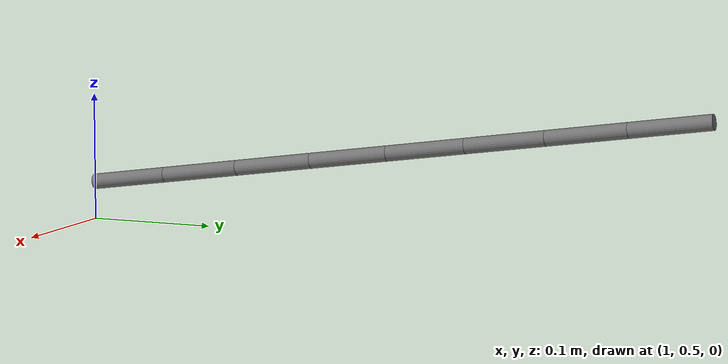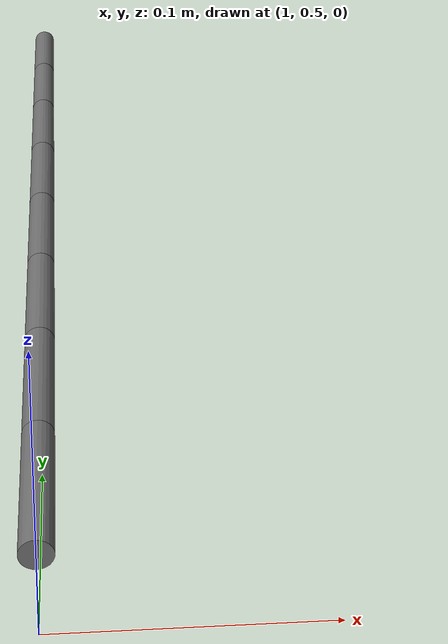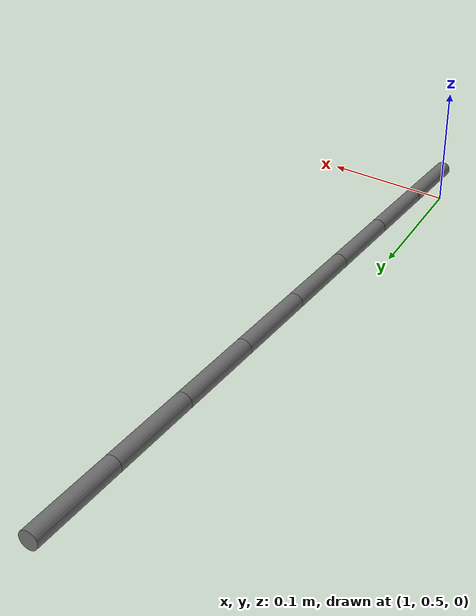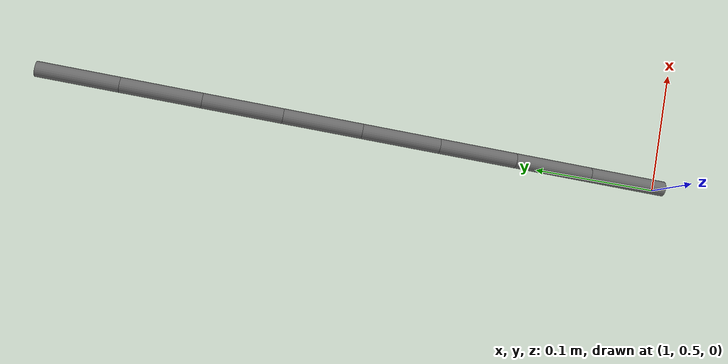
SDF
<?xml version="1.0"?>
<sdf version="1.7">
  <model name="cable_3">
    <self_collide>false</self_collide>

    <!-- Segment 0 -->
    <link name="seg_0">
      <pose>1.000000 0.968750 0.095625 0.000000 1.709892 -1.570796</pose>
      <inertial>
        <mass>0.006</mass>
        <inertia>
          <ixx>0.000002045</ixx>
          <iyy>0.000002045</iyy>
          <izz>0.000000108</izz>
          <ixy>0</ixy><ixz>0</ixz><iyz>0</iyz>
        </inertia>
      </inertial>
      <collision name="col">
        <geometry>
          <cylinder><radius>0.006</radius><length>0.063110</length></cylinder>
        </geometry>
      </collision>
      <visual name="vis">
        <geometry>
          <cylinder><radius>0.006</radius><length>0.063110</length></cylinder>
        </geometry>
        <material>
          <ambient>0.20 0.20 0.20 1</ambient>
          <diffuse>0.45 0.45 0.45 1</diffuse>
          <specular>0.05 0.05 0.05 1</specular>
        </material>
      </visual>
    </link>

    <!-- Segment 1 -->
    <link name="seg_1">
      <pose>1.000000 0.906250 0.086875 0.000000 1.709892 -1.570796</pose>
      <inertial>
        <mass>0.006</mass>
        <inertia>
          <ixx>0.000002045</ixx>
          <iyy>0.000002045</iyy>
          <izz>0.000000108</izz>
          <ixy>0</ixy><ixz>0</ixz><iyz>0</iyz>
        </inertia>
      </inertial>
      <collision name="col">
        <geometry>
          <cylinder><radius>0.006</radius><length>0.063110</length></cylinder>
        </geometry>
      </collision>
      <visual name="vis">
        <geometry>
          <cylinder><radius>0.006</radius><length>0.063110</length></cylinder>
        </geometry>
        <material>
          <ambient>0.20 0.20 0.20 1</ambient>
          <diffuse>0.45 0.45 0.45 1</diffuse>
          <specular>0.05 0.05 0.05 1</specular>
        </material>
      </visual>
    </link>

    <!-- Segment 2 -->
    <link name="seg_2">
      <pose>1.000000 0.843750 0.078125 0.000000 1.709892 -1.570796</pose>
      <inertial>
        <mass>0.006</mass>
        <inertia>
          <ixx>0.000002045</ixx>
          <iyy>0.000002045</iyy>
          <izz>0.000000108</izz>
          <ixy>0</ixy><ixz>0</ixz><iyz>0</iyz>
        </inertia>
      </inertial>
      <collision name="col">
        <geometry>
          <cylinder><radius>0.006</radius><length>0.063110</length></cylinder>
        </geometry>
      </collision>
      <visual name="vis">
        <geometry>
          <cylinder><radius>0.006</radius><length>0.063110</length></cylinder>
        </geometry>
        <material>
          <ambient>0.20 0.20 0.20 1</ambient>
          <diffuse>0.45 0.45 0.45 1</diffuse>
          <specular>0.05 0.05 0.05 1</specular>
        </material>
      </visual>
    </link>

    <!-- Segment 3 -->
    <link name="seg_3">
      <pose>1.000000 0.781250 0.069375 0.000000 1.709892 -1.570796</pose>
      <inertial>
        <mass>0.006</mass>
        <inertia>
          <ixx>0.000002045</ixx>
          <iyy>0.000002045</iyy>
          <izz>0.000000108</izz>
          <ixy>0</ixy><ixz>0</ixz><iyz>0</iyz>
        </inertia>
      </inertial>
      <collision name="col">
        <geometry>
          <cylinder><radius>0.006</radius><length>0.063110</length></cylinder>
        </geometry>
      </collision>
      <visual name="vis">
        <geometry>
          <cylinder><radius>0.006</radius><length>0.063110</length></cylinder>
        </geometry>
        <material>
          <ambient>0.20 0.20 0.20 1</ambient>
          <diffuse>0.45 0.45 0.45 1</diffuse>
          <specular>0.05 0.05 0.05 1</specular>
        </material>
      </visual>
    </link>

    <!-- Segment 4 -->
    <link name="seg_4">
      <pose>1.000000 0.718750 0.060625 0.000000 1.709892 -1.570796</pose>
      <inertial>
        <mass>0.006</mass>
        <inertia>
          <ixx>0.000002045</ixx>
          <iyy>0.000002045</iyy>
          <izz>0.000000108</izz>
          <ixy>0</ixy><ixz>0</ixz><iyz>0</iyz>
        </inertia>
      </inertial>
      <collision name="col">
        <geometry>
          <cylinder><radius>0.006</radius><length>0.063110</length></cylinder>
        </geometry>
      </collision>
      <visual name="vis">
        <geometry>
          <cylinder><radius>0.006</radius><length>0.063110</length></cylinder>
        </geometry>
        <material>
          <ambient>0.20 0.20 0.20 1</ambient>
          <diffuse>0.45 0.45 0.45 1</diffuse>
          <specular>0.05 0.05 0.05 1</specular>
        </material>
      </visual>
    </link>

    <!-- Segment 5 -->
    <link name="seg_5">
      <pose>1.000000 0.656250 0.051875 0.000000 1.709892 -1.570796</pose>
      <inertial>
        <mass>0.006</mass>
        <inertia>
          <ixx>0.000002045</ixx>
          <iyy>0.000002045</iyy>
          <izz>0.000000108</izz>
          <ixy>0</ixy><ixz>0</ixz><iyz>0</iyz>
        </inertia>
      </inertial>
      <collision name="col">
        <geometry>
          <cylinder><radius>0.006</radius><length>0.063110</length></cylinder>
        </geometry>
      </collision>
      <visual name="vis">
        <geometry>
          <cylinder><radius>0.006</radius><length>0.063110</length></cylinder>
        </geometry>
        <material>
          <ambient>0.20 0.20 0.20 1</ambient>
          <diffuse>0.45 0.45 0.45 1</diffuse>
          <specular>0.05 0.05 0.05 1</specular>
        </material>
      </visual>
    </link>

    <!-- Segment 6 -->
    <link name="seg_6">
      <pose>1.000000 0.593750 0.043125 0.000000 1.709892 -1.570796</pose>
      <inertial>
        <mass>0.006</mass>
        <inertia>
          <ixx>0.000002045</ixx>
          <iyy>0.000002045</iyy>
          <izz>0.000000108</izz>
          <ixy>0</ixy><ixz>0</ixz><iyz>0</iyz>
        </inertia>
      </inertial>
      <collision name="col">
        <geometry>
          <cylinder><radius>0.006</radius><length>0.063110</length></cylinder>
        </geometry>
      </collision>
      <visual name="vis">
        <geometry>
          <cylinder><radius>0.006</radius><length>0.063110</length></cylinder>
        </geometry>
        <material>
          <ambient>0.20 0.20 0.20 1</ambient>
          <diffuse>0.45 0.45 0.45 1</diffuse>
          <specular>0.05 0.05 0.05 1</specular>
        </material>
      </visual>
    </link>

    <!-- Segment 7 -->
    <link name="seg_7">
      <pose>1.000000 0.531250 0.034375 0.000000 1.709892 -1.570796</pose>
      <inertial>
        <mass>0.006</mass>
        <inertia>
          <ixx>0.000002045</ixx>
          <iyy>0.000002045</iyy>
          <izz>0.000000108</izz>
          <ixy>0</ixy><ixz>0</ixz><iyz>0</iyz>
        </inertia>
      </inertial>
      <collision name="col">
        <geometry>
          <cylinder><radius>0.006</radius><length>0.063110</length></cylinder>
        </geometry>
      </collision>
      <visual name="vis">
        <geometry>
          <cylinder><radius>0.006</radius><length>0.063110</length></cylinder>
        </geometry>
        <material>
          <ambient>0.20 0.20 0.20 1</ambient>
          <diffuse>0.45 0.45 0.45 1</diffuse>
          <specular>0.05 0.05 0.05 1</specular>
        </material>
      </visual>
    </link>

    <joint name="j_0_1" type="ball">
      <!-- joint at (1.0000, 0.9375, 0.0912) in world frame -->
      <pose relative_to="__model__">1.000000 0.937500 0.091250 0 0 0</pose>
      <parent>seg_0</parent>
      <child>seg_1</child>
    </joint>

    <joint name="j_1_2" type="ball">
      <!-- joint at (1.0000, 0.8750, 0.0825) in world frame -->
      <pose relative_to="__model__">1.000000 0.875000 0.082500 0 0 0</pose>
      <parent>seg_1</parent>
      <child>seg_2</child>
    </joint>

    <joint name="j_2_3" type="ball">
      <!-- joint at (1.0000, 0.8125, 0.0738) in world frame -->
      <pose relative_to="__model__">1.000000 0.812500 0.073750 0 0 0</pose>
      <parent>seg_2</parent>
      <child>seg_3</child>
    </joint>

    <joint name="j_3_4" type="ball">
      <!-- joint at (1.0000, 0.7500, 0.0650) in world frame -->
      <pose relative_to="__model__">1.000000 0.750000 0.065000 0 0 0</pose>
      <parent>seg_3</parent>
      <child>seg_4</child>
    </joint>

    <joint name="j_4_5" type="ball">
      <!-- joint at (1.0000, 0.6875, 0.0563) in world frame -->
      <pose relative_to="__model__">1.000000 0.687500 0.056250 0 0 0</pose>
      <parent>seg_4</parent>
      <child>seg_5</child>
    </joint>

    <joint name="j_5_6" type="ball">
      <!-- joint at (1.0000, 0.6250, 0.0475) in world frame -->
      <pose relative_to="__model__">1.000000 0.625000 0.047500 0 0 0</pose>
      <parent>seg_5</parent>
      <child>seg_6</child>
    </joint>

    <joint name="j_6_7" type="ball">
      <!-- joint at (1.0000, 0.5625, 0.0387) in world frame -->
      <pose relative_to="__model__">1.000000 0.562500 0.038750 0 0 0</pose>
      <parent>seg_6</parent>
      <child>seg_7</child>
    </joint>

  </model>
</sdf>
